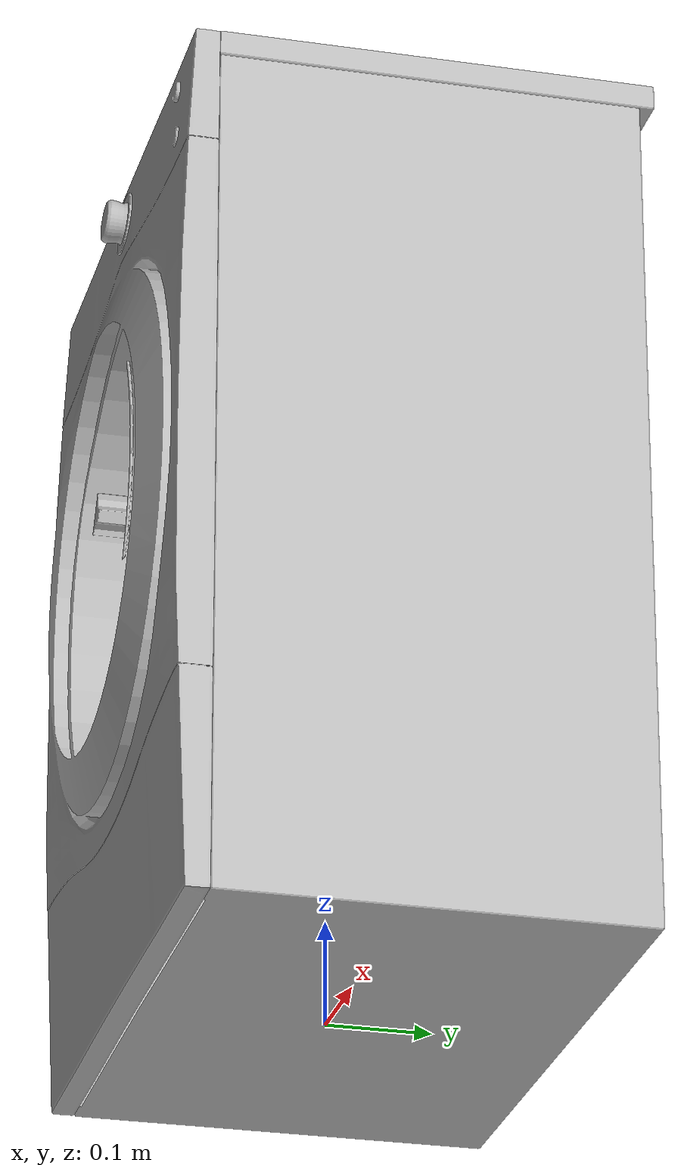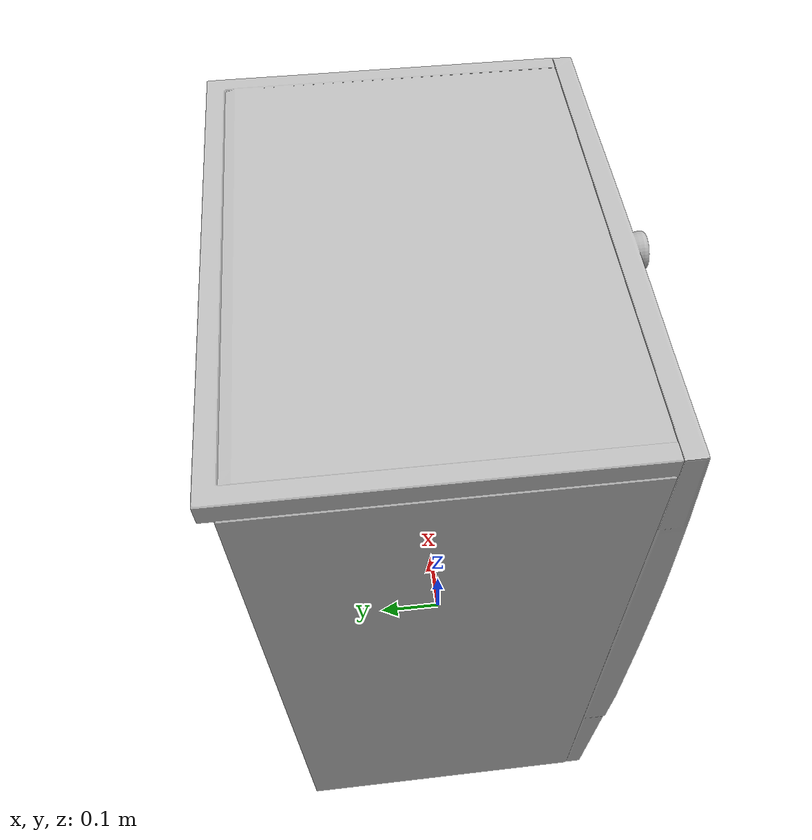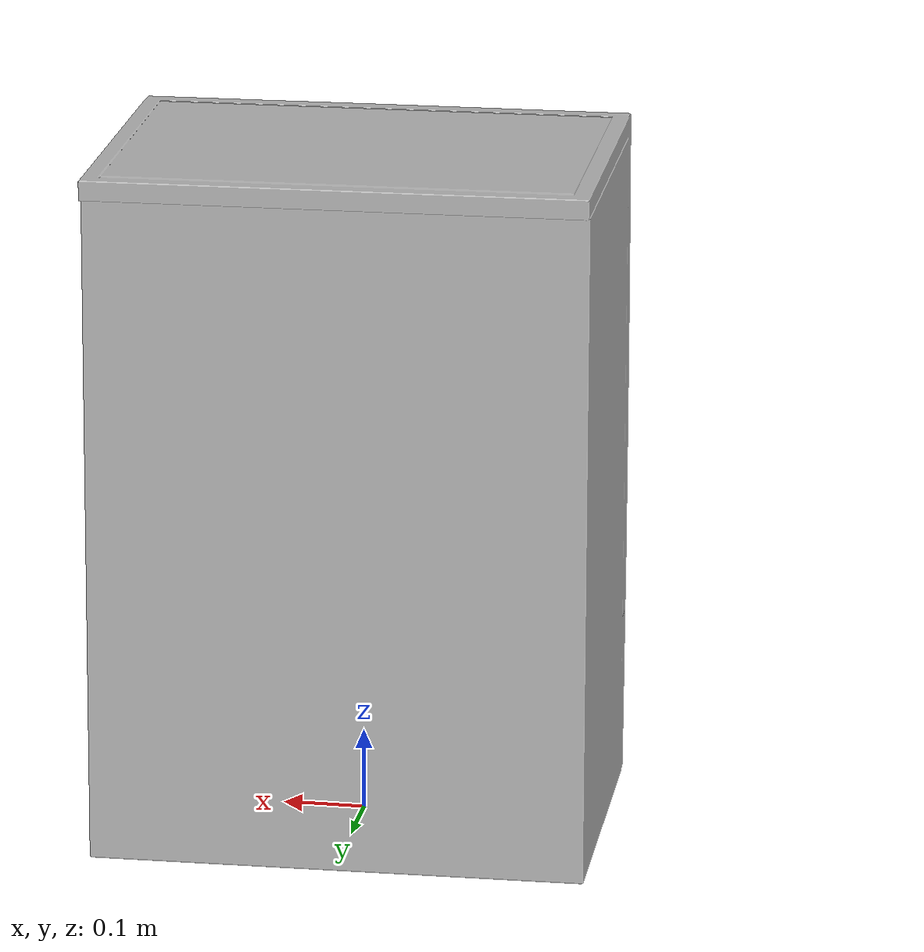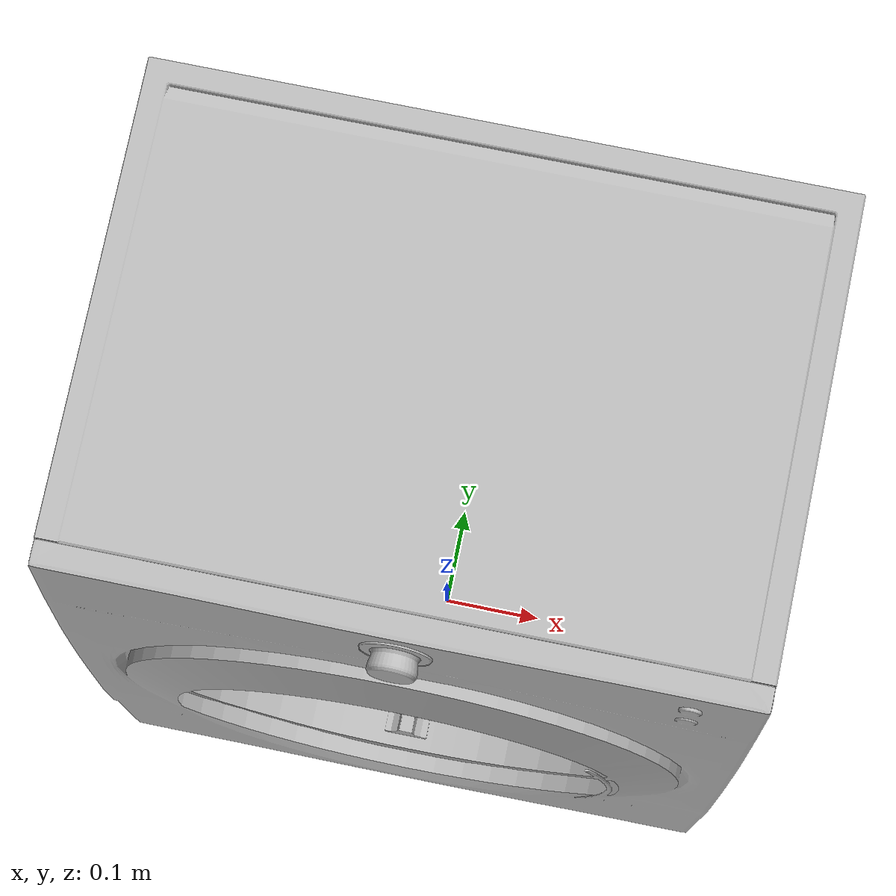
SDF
<?xml version='1.0'?>
<sdf version='1.6'>
  <model name='18_ClothesDryer'>
    <link name='body'>
	  <inertial>
        <mass>60</mass>
        <pose frame=''>0 0 0 0 0 0</pose>
        <inertia>
          <ixx>4.7857229765</ixx>
          <ixy>0</ixy>
          <ixz>0</ixz>
          <iyy>5.420907189</iyy>
          <iyz>0</iyz>
          <izz>2.9940348365</izz>
        </inertia>
      </inertial>
      <pose frame=''>0 0 0 0 -0 0</pose>
      <self_collide>0</self_collide>
      <kinematic>0</kinematic>
      <gravity>1</gravity>
      <visual name='visual'>
        <geometry>
          <mesh>
            <uri>model://ClothesDryer_bb487c6818dc_lod0/meshes/visual_LowPoly_18_ClothesDryer.dae</uri>
          </mesh>
        </geometry>
		<meta> <layer> 1 </layer></meta>
      </visual>
      <collision name='collision_0'>
        <laser_retro>0</laser_retro>
        <max_contacts>10</max_contacts>
        <pose frame=''>0 0 0 0 -0 0</pose>
        <geometry>
          <mesh>
            <uri>model://ClothesDryer_bb487c6818dc_lod0/meshes/collision_18_ClothesDryer.dae</uri>
            <scale>1 1 1</scale>
          </mesh>
        </geometry>
		<surface>
          <friction>
            <ode>
              <mu>0.6</mu>
              <mu2>0.6</mu2>
              <fdir1>0 0 0</fdir1>
              <slip1>0</slip1>
              <slip2>0</slip2>
            </ode>
            <torsional>
              <coefficient>1</coefficient>
              <patch_radius>0</patch_radius>
              <surface_radius>0</surface_radius>
              <use_patch_radius>1</use_patch_radius>
              <ode>
                <slip>0</slip>
              </ode>
            </torsional>
          </friction>
        </surface>
      </collision>
    </link>
    <static>true</static>
  </model>
</sdf>
